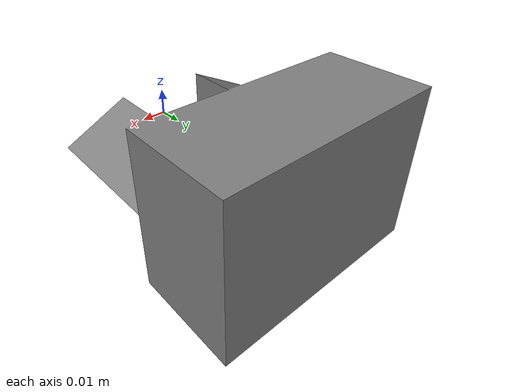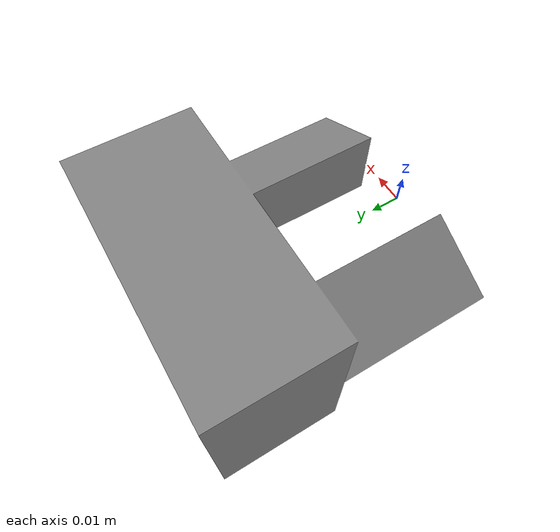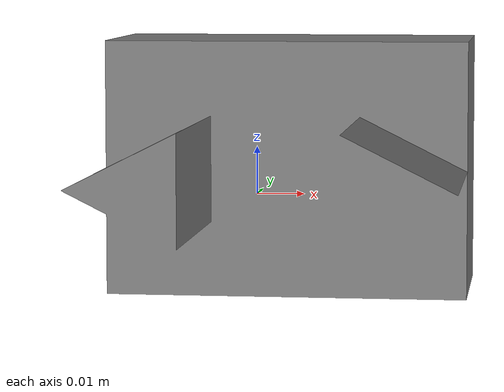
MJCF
<mujoco model="peg_triangle36">
  <default>
    <default class="visual">
      <geom group="2" type="mesh" contype="0" conaffinity="0"/>
    </default>
    <default class="collision">
      <geom group="3" type="mesh"/>
    </default>
  </default>
  <asset>
    <mesh file="peg_triangle36.obj"/>
    <mesh file="peg_triangle36_collision_0.obj"/>
    <mesh file="peg_triangle36_collision_1.obj"/>
    <mesh file="peg_triangle36_collision_2.obj"/>
    <mesh file="peg_triangle36_collision_3.obj"/>
    <mesh file="peg_triangle36_collision_4.obj"/>
    <mesh file="peg_triangle36_collision_5.obj"/>
    <mesh file="peg_triangle36_collision_6.obj"/>
    <mesh file="peg_triangle36_collision_7.obj"/>
    <mesh file="peg_triangle36_collision_8.obj"/>
    <mesh file="peg_triangle36_collision_9.obj"/>
    <mesh file="peg_triangle36_collision_10.obj"/>
    <mesh file="peg_triangle36_collision_11.obj"/>
    <mesh file="peg_triangle36_collision_12.obj"/>
    <mesh file="peg_triangle36_collision_13.obj"/>
    <mesh file="peg_triangle36_collision_14.obj"/>
    <mesh file="peg_triangle36_collision_15.obj"/>
    <mesh file="peg_triangle36_collision_16.obj"/>
    <mesh file="peg_triangle36_collision_17.obj"/>
    <mesh file="peg_triangle36_collision_18.obj"/>
    <mesh file="peg_triangle36_collision_19.obj"/>
    <mesh file="peg_triangle36_collision_20.obj"/>
    <mesh file="peg_triangle36_collision_21.obj"/>
    <mesh file="peg_triangle36_collision_22.obj"/>
    <mesh file="peg_triangle36_collision_23.obj"/>
    <mesh file="peg_triangle36_collision_24.obj"/>
    <mesh file="peg_triangle36_collision_25.obj"/>
    <mesh file="peg_triangle36_collision_26.obj"/>
    <mesh file="peg_triangle36_collision_27.obj"/>
    <mesh file="peg_triangle36_collision_28.obj"/>
    <mesh file="peg_triangle36_collision_30.obj"/>
    <mesh file="peg_triangle36_collision_31.obj"/>
  </asset>
  <worldbody>
    <body name="peg_triangle36">
      <geom mesh="peg_triangle36" class="visual"/>
      <geom mesh="peg_triangle36_collision_0" class="collision"/>
      <geom mesh="peg_triangle36_collision_1" class="collision"/>
      <geom mesh="peg_triangle36_collision_2" class="collision"/>
      <geom mesh="peg_triangle36_collision_3" class="collision"/>
      <geom mesh="peg_triangle36_collision_4" class="collision"/>
      <geom mesh="peg_triangle36_collision_5" class="collision"/>
      <geom mesh="peg_triangle36_collision_6" class="collision"/>
      <geom mesh="peg_triangle36_collision_7" class="collision"/>
      <geom mesh="peg_triangle36_collision_8" class="collision"/>
      <geom mesh="peg_triangle36_collision_9" class="collision"/>
      <geom mesh="peg_triangle36_collision_10" class="collision"/>
      <geom mesh="peg_triangle36_collision_11" class="collision"/>
      <geom mesh="peg_triangle36_collision_12" class="collision"/>
      <geom mesh="peg_triangle36_collision_13" class="collision"/>
      <geom mesh="peg_triangle36_collision_14" class="collision"/>
      <geom mesh="peg_triangle36_collision_15" class="collision"/>
      <geom mesh="peg_triangle36_collision_16" class="collision"/>
      <geom mesh="peg_triangle36_collision_17" class="collision"/>
      <geom mesh="peg_triangle36_collision_18" class="collision"/>
      <geom mesh="peg_triangle36_collision_19" class="collision"/>
      <geom mesh="peg_triangle36_collision_20" class="collision"/>
      <geom mesh="peg_triangle36_collision_21" class="collision"/>
      <geom mesh="peg_triangle36_collision_22" class="collision"/>
      <geom mesh="peg_triangle36_collision_23" class="collision"/>
      <geom mesh="peg_triangle36_collision_24" class="collision"/>
      <geom mesh="peg_triangle36_collision_25" class="collision"/>
      <geom mesh="peg_triangle36_collision_26" class="collision"/>
      <geom mesh="peg_triangle36_collision_27" class="collision"/>
      <geom mesh="peg_triangle36_collision_28" class="collision"/>
      <geom mesh="peg_triangle36_collision_30" class="collision"/>
      <geom mesh="peg_triangle36_collision_31" class="collision"/>
    </body>
  </worldbody>
</mujoco>
